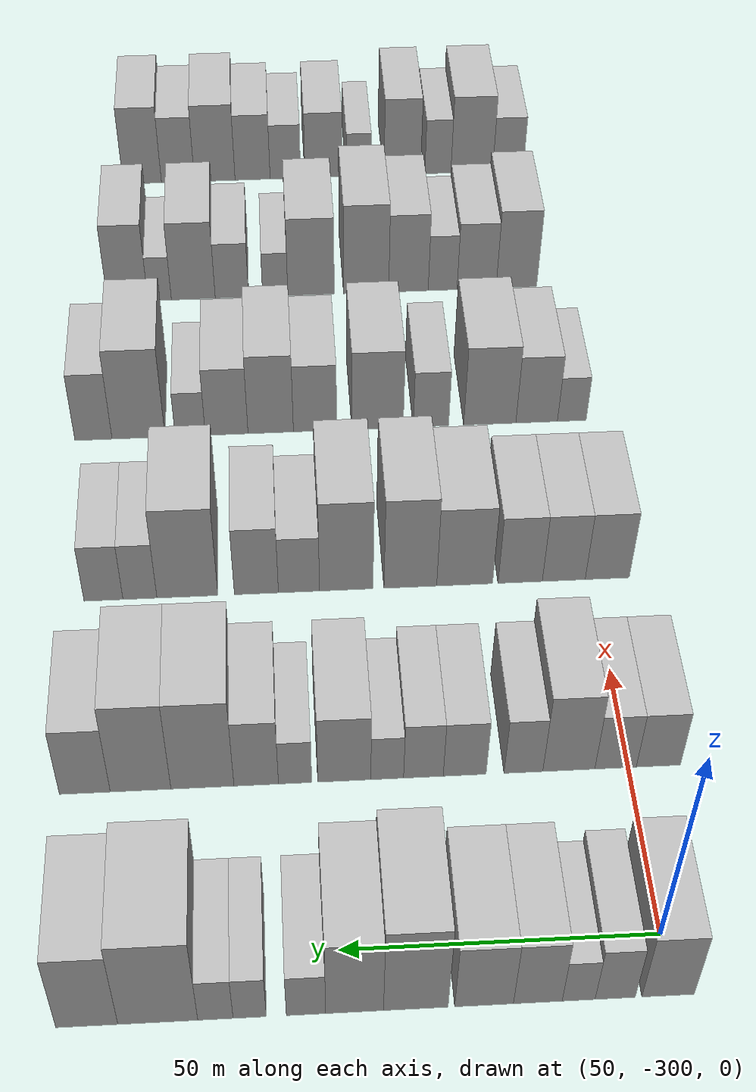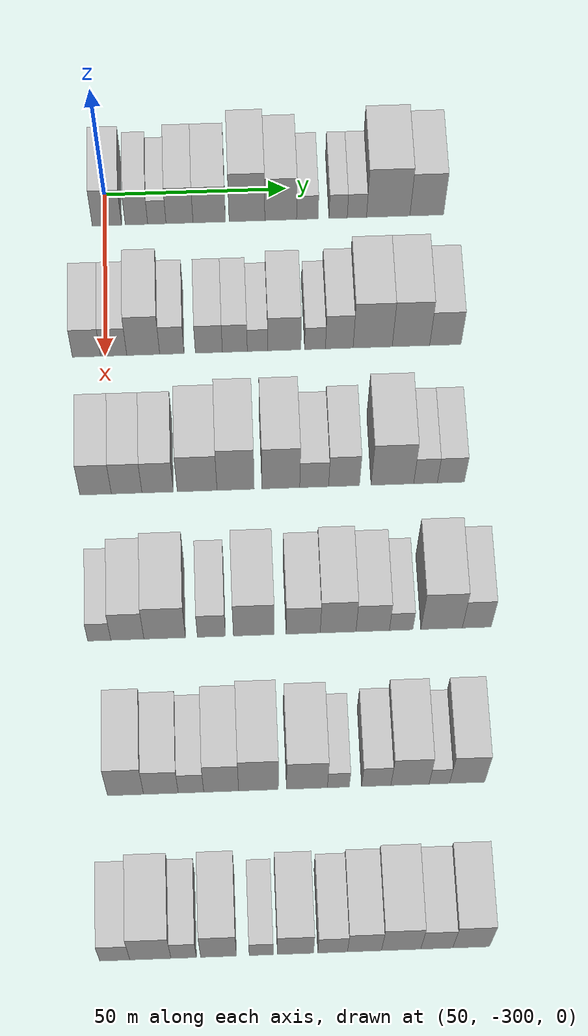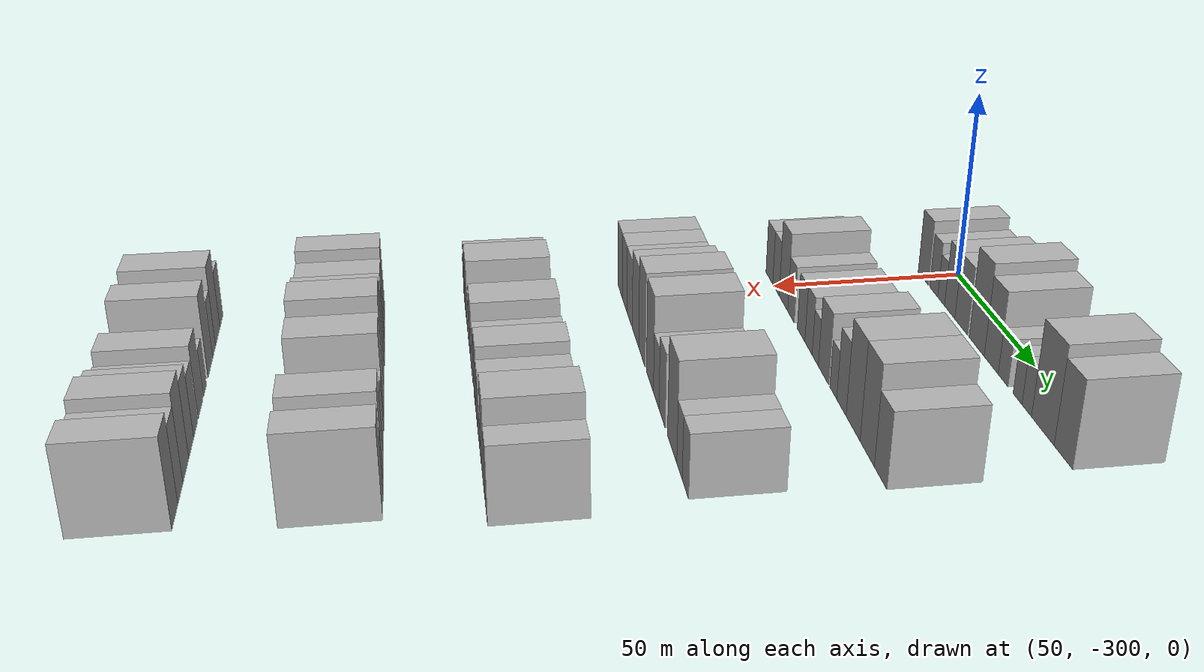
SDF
<sdf version="1.6">
 <world name="default">
  <model name="building_36">
   <static>1</static>
   <pose>50.0000 -299.3510 0 0.000000 0.000000 0.000000</pose>
   <link name="link">
    <pose>0 0 9.00 0 0 0</pose>
    <collision name="collision"><geometry><box><size>20.0000 8.0002 18.0000</size></box></geometry></collision>
    <visual name="visual">
     <cast_shadows>0</cast_shadows>
     <geometry><box><size>20.0000 8.0002 18.0000</size></box></geometry>
     <material>
      <script>
       <uri>model://HANNAS_wall/materials/scripts</uri>
       <uri>model://HANNAS_wall/materials/textures</uri>
       <name>vrc/HANNAS_wall</name>
      </script>
     </material>
    </visual>
   </link>
  </model>
  <model name="building_37">
   <static>1</static>
   <pose>50.0000 -291.2949 0 0.000000 0.000000 0.000000</pose>
   <link name="link">
    <pose>0 0 7.50 0 0 0</pose>
    <collision name="collision"><geometry><box><size>20.0000 6.1120 15.0000</size></box></geometry></collision>
    <visual name="visual">
     <cast_shadows>0</cast_shadows>
     <geometry><box><size>20.0000 6.1120 15.0000</size></box></geometry>
     <material>
      <script>
       <uri>model://HANNAS_wall/materials/scripts</uri>
       <uri>model://HANNAS_wall/materials/textures</uri>
       <name>vrc/HANNAS_wall</name>
      </script>
     </material>
    </visual>
   </link>
  </model>
  <model name="building_38">
   <static>1</static>
   <pose>50.0000 -285.7349 0 0.000000 0.000000 0.000000</pose>
   <link name="link">
    <pose>0 0 6.00 0 0 0</pose>
    <collision name="collision"><geometry><box><size>20.0000 5.0080 12.0000</size></box></geometry></collision>
    <visual name="visual">
     <cast_shadows>0</cast_shadows>
     <geometry><box><size>20.0000 5.0080 12.0000</size></box></geometry>
     <material>
      <script>
       <uri>model://HANNAS_wall/materials/scripts</uri>
       <uri>model://HANNAS_wall/materials/textures</uri>
       <name>vrc/HANNAS_wall</name>
      </script>
     </material>
    </visual>
   </link>
  </model>
  <model name="building_39">
   <static>1</static>
   <pose>50.0000 -279.5450 0 0.000000 0.000000 0.000000</pose>
   <link name="link">
    <pose>0 0 9.00 0 0 0</pose>
    <collision name="collision"><geometry><box><size>20.0000 7.3717 18.0000</size></box></geometry></collision>
    <visual name="visual">
     <cast_shadows>0</cast_shadows>
     <geometry><box><size>20.0000 7.3717 18.0000</size></box></geometry>
     <material>
      <script>
       <uri>model://HANNAS_wall/materials/scripts</uri>
       <uri>model://HANNAS_wall/materials/textures</uri>
       <name>vrc/HANNAS_wall</name>
      </script>
     </material>
    </visual>
   </link>
  </model>
  <model name="building_40">
   <static>1</static>
   <pose>50.0000 -271.4269 0 0.000000 0.000000 0.000000</pose>
   <link name="link">
    <pose>0 0 9.00 0 0 0</pose>
    <collision name="collision"><geometry><box><size>20.0000 8.8646 18.0000</size></box></geometry></collision>
    <visual name="visual">
     <cast_shadows>0</cast_shadows>
     <geometry><box><size>20.0000 8.8646 18.0000</size></box></geometry>
     <material>
      <script>
       <uri>model://HANNAS_wall/materials/scripts</uri>
       <uri>model://HANNAS_wall/materials/textures</uri>
       <name>vrc/HANNAS_wall</name>
      </script>
     </material>
    </visual>
   </link>
  </model>
  <model name="building_41">
   <static>1</static>
   <pose>50.0000 -261.1296 0 0.000000 0.000000 0.000000</pose>
   <link name="link">
    <pose>0 0 12.00 0 0 0</pose>
    <collision name="collision"><geometry><box><size>20.0000 9.7300 24.0000</size></box></geometry></collision>
    <visual name="visual">
     <cast_shadows>0</cast_shadows>
     <geometry><box><size>20.0000 9.7300 24.0000</size></box></geometry>
     <material>
      <script>
       <uri>model://HANNAS_wall/materials/scripts</uri>
       <uri>model://HANNAS_wall/materials/textures</uri>
       <name>vrc/HANNAS_wall</name>
      </script>
     </material>
    </visual>
   </link>
  </model>
  <model name="building_42">
   <static>1</static>
   <pose>50.0000 -251.9216 0 0.000000 0.000000 0.000000</pose>
   <link name="link">
    <pose>0 0 10.50 0 0 0</pose>
    <collision name="collision"><geometry><box><size>20.0000 8.6859 21.0000</size></box></geometry></collision>
    <visual name="visual">
     <cast_shadows>0</cast_shadows>
     <geometry><box><size>20.0000 8.6859 21.0000</size></box></geometry>
     <material>
      <script>
       <uri>model://HANNAS_wall/materials/scripts</uri>
       <uri>model://HANNAS_wall/materials/textures</uri>
       <name>vrc/HANNAS_wall</name>
      </script>
     </material>
    </visual>
   </link>
  </model>
  <model name="building_43">
   <static>1</static>
   <pose>50.0000 -244.6372 0 0.000000 0.000000 0.000000</pose>
   <link name="link">
    <pose>0 0 6.00 0 0 0</pose>
    <collision name="collision"><geometry><box><size>20.0000 5.8830 12.0000</size></box></geometry></collision>
    <visual name="visual">
     <cast_shadows>0</cast_shadows>
     <geometry><box><size>20.0000 5.8830 12.0000</size></box></geometry>
     <material>
      <script>
       <uri>model://HANNAS_wall/materials/scripts</uri>
       <uri>model://HANNAS_wall/materials/textures</uri>
       <name>vrc/HANNAS_wall</name>
      </script>
     </material>
    </visual>
   </link>
  </model>
  <model name="building_44">
   <static>1</static>
   <pose>50.0000 -236.2079 0 0.000000 0.000000 0.000000</pose>
   <link name="link">
    <pose>0 0 6.00 0 0 0</pose>
    <collision name="collision"><geometry><box><size>20.0000 4.9757 12.0000</size></box></geometry></collision>
    <visual name="visual">
     <cast_shadows>0</cast_shadows>
     <geometry><box><size>20.0000 4.9757 12.0000</size></box></geometry>
     <material>
      <script>
       <uri>model://HANNAS_wall/materials/scripts</uri>
       <uri>model://HANNAS_wall/materials/textures</uri>
       <name>vrc/HANNAS_wall</name>
      </script>
     </material>
    </visual>
   </link>
  </model>
  <model name="building_45">
   <static>1</static>
   <pose>50.0000 -231.0833 0 0.000000 0.000000 0.000000</pose>
   <link name="link">
    <pose>0 0 6.00 0 0 0</pose>
    <collision name="collision"><geometry><box><size>20.0000 5.2734 12.0000</size></box></geometry></collision>
    <visual name="visual">
     <cast_shadows>0</cast_shadows>
     <geometry><box><size>20.0000 5.2734 12.0000</size></box></geometry>
     <material>
      <script>
       <uri>model://HANNAS_wall/materials/scripts</uri>
       <uri>model://HANNAS_wall/materials/textures</uri>
       <name>vrc/HANNAS_wall</name>
      </script>
     </material>
    </visual>
   </link>
  </model>
  <model name="building_46">
   <static>1</static>
   <pose>50.0000 -222.4965 0 0.000000 0.000000 0.000000</pose>
   <link name="link">
    <pose>0 0 12.00 0 0 0</pose>
    <collision name="collision"><geometry><box><size>20.0000 11.9003 24.0000</size></box></geometry></collision>
    <visual name="visual">
     <cast_shadows>0</cast_shadows>
     <geometry><box><size>20.0000 11.9003 24.0000</size></box></geometry>
     <material>
      <script>
       <uri>model://HANNAS_wall/materials/scripts</uri>
       <uri>model://HANNAS_wall/materials/textures</uri>
       <name>vrc/HANNAS_wall</name>
      </script>
     </material>
    </visual>
   </link>
  </model>
  <model name="building_47">
   <static>1</static>
   <pose>50.0000 -211.9407 0 0.000000 0.000000 0.000000</pose>
   <link name="link">
    <pose>0 0 10.50 0 0 0</pose>
    <collision name="collision"><geometry><box><size>20.0000 9.2112 21.0000</size></box></geometry></collision>
    <visual name="visual">
     <cast_shadows>0</cast_shadows>
     <geometry><box><size>20.0000 9.2112 21.0000</size></box></geometry>
     <material>
      <script>
       <uri>model://HANNAS_wall/materials/scripts</uri>
       <uri>model://HANNAS_wall/materials/textures</uri>
       <name>vrc/HANNAS_wall</name>
      </script>
     </material>
    </visual>
   </link>
  </model>
  <model name="building_174">
   <static>1</static>
   <pose>90.0000 -305.0205 0 0.000000 0.000000 0.000000</pose>
   <link name="link">
    <pose>0 0 7.50 0 0 0</pose>
    <collision name="collision"><geometry><box><size>20.0000 7.4424 15.0000</size></box></geometry></collision>
    <visual name="visual">
     <cast_shadows>0</cast_shadows>
     <geometry><box><size>20.0000 7.4424 15.0000</size></box></geometry>
     <material>
      <script>
       <uri>model://HANNAS_wall/materials/scripts</uri>
       <uri>model://HANNAS_wall/materials/textures</uri>
       <name>vrc/HANNAS_wall</name>
      </script>
     </material>
    </visual>
   </link>
  </model>
  <model name="building_175">
   <static>1</static>
   <pose>90.0000 -297.8100 0 0.000000 0.000000 0.000000</pose>
   <link name="link">
    <pose>0 0 7.50 0 0 0</pose>
    <collision name="collision"><geometry><box><size>20.0000 6.9787 15.0000</size></box></geometry></collision>
    <visual name="visual">
     <cast_shadows>0</cast_shadows>
     <geometry><box><size>20.0000 6.9787 15.0000</size></box></geometry>
     <material>
      <script>
       <uri>model://HANNAS_wall/materials/scripts</uri>
       <uri>model://HANNAS_wall/materials/textures</uri>
       <name>vrc/HANNAS_wall</name>
      </script>
     </material>
    </visual>
   </link>
  </model>
  <model name="building_176">
   <static>1</static>
   <pose>90.0000 -289.9534 0 0.000000 0.000000 0.000000</pose>
   <link name="link">
    <pose>0 0 10.50 0 0 0</pose>
    <collision name="collision"><geometry><box><size>20.0000 8.7344 21.0000</size></box></geometry></collision>
    <visual name="visual">
     <cast_shadows>0</cast_shadows>
     <geometry><box><size>20.0000 8.7344 21.0000</size></box></geometry>
     <material>
      <script>
       <uri>model://HANNAS_wall/materials/scripts</uri>
       <uri>model://HANNAS_wall/materials/textures</uri>
       <name>vrc/HANNAS_wall</name>
      </script>
     </material>
    </visual>
   </link>
  </model>
  <model name="building_177">
   <static>1</static>
   <pose>90.0000 -282.3411 0 0.000000 0.000000 0.000000</pose>
   <link name="link">
    <pose>0 0 7.50 0 0 0</pose>
    <collision name="collision"><geometry><box><size>20.0000 6.4903 15.0000</size></box></geometry></collision>
    <visual name="visual">
     <cast_shadows>0</cast_shadows>
     <geometry><box><size>20.0000 6.4903 15.0000</size></box></geometry>
     <material>
      <script>
       <uri>model://HANNAS_wall/materials/scripts</uri>
       <uri>model://HANNAS_wall/materials/textures</uri>
       <name>vrc/HANNAS_wall</name>
      </script>
     </material>
    </visual>
   </link>
  </model>
  <model name="building_178">
   <static>1</static>
   <pose>90.0000 -272.5128 0 0.000000 0.000000 0.000000</pose>
   <link name="link">
    <pose>0 0 7.50 0 0 0</pose>
    <collision name="collision"><geometry><box><size>20.0000 7.1663 15.0000</size></box></geometry></collision>
    <visual name="visual">
     <cast_shadows>0</cast_shadows>
     <geometry><box><size>20.0000 7.1663 15.0000</size></box></geometry>
     <material>
      <script>
       <uri>model://HANNAS_wall/materials/scripts</uri>
       <uri>model://HANNAS_wall/materials/textures</uri>
       <name>vrc/HANNAS_wall</name>
      </script>
     </material>
    </visual>
   </link>
  </model>
  <model name="building_179">
   <static>1</static>
   <pose>90.0000 -265.6254 0 0.000000 0.000000 0.000000</pose>
   <link name="link">
    <pose>0 0 7.50 0 0 0</pose>
    <collision name="collision"><geometry><box><size>20.0000 6.6085 15.0000</size></box></geometry></collision>
    <visual name="visual">
     <cast_shadows>0</cast_shadows>
     <geometry><box><size>20.0000 6.6085 15.0000</size></box></geometry>
     <material>
      <script>
       <uri>model://HANNAS_wall/materials/scripts</uri>
       <uri>model://HANNAS_wall/materials/textures</uri>
       <name>vrc/HANNAS_wall</name>
      </script>
     </material>
    </visual>
   </link>
  </model>
  <model name="building_180">
   <static>1</static>
   <pose>90.0000 -259.5897 0 0.000000 0.000000 0.000000</pose>
   <link name="link">
    <pose>0 0 6.00 0 0 0</pose>
    <collision name="collision"><geometry><box><size>20.0000 5.4628 12.0000</size></box></geometry></collision>
    <visual name="visual">
     <cast_shadows>0</cast_shadows>
     <geometry><box><size>20.0000 5.4628 12.0000</size></box></geometry>
     <material>
      <script>
       <uri>model://HANNAS_wall/materials/scripts</uri>
       <uri>model://HANNAS_wall/materials/textures</uri>
       <name>vrc/HANNAS_wall</name>
      </script>
     </material>
    </visual>
   </link>
  </model>
  <model name="building_181">
   <static>1</static>
   <pose>90.0000 -252.4608 0 0.000000 0.000000 0.000000</pose>
   <link name="link">
    <pose>0 0 9.00 0 0 0</pose>
    <collision name="collision"><geometry><box><size>20.0000 8.7951 18.0000</size></box></geometry></collision>
    <visual name="visual">
     <cast_shadows>0</cast_shadows>
     <geometry><box><size>20.0000 8.7951 18.0000</size></box></geometry>
     <material>
      <script>
       <uri>model://HANNAS_wall/materials/scripts</uri>
       <uri>model://HANNAS_wall/materials/textures</uri>
       <name>vrc/HANNAS_wall</name>
      </script>
     </material>
    </visual>
   </link>
  </model>
  <model name="building_182">
   <static>1</static>
   <pose>90.0000 -244.3049 0 0.000000 0.000000 0.000000</pose>
   <link name="link">
    <pose>0 0 6.00 0 0 0</pose>
    <collision name="collision"><geometry><box><size>20.0000 5.5166 12.0000</size></box></geometry></collision>
    <visual name="visual">
     <cast_shadows>0</cast_shadows>
     <geometry><box><size>20.0000 5.5166 12.0000</size></box></geometry>
     <material>
      <script>
       <uri>model://HANNAS_wall/materials/scripts</uri>
       <uri>model://HANNAS_wall/materials/textures</uri>
       <name>vrc/HANNAS_wall</name>
      </script>
     </material>
    </visual>
   </link>
  </model>
  <model name="building_183">
   <static>1</static>
   <pose>90.0000 -237.8614 0 0.000000 0.000000 0.000000</pose>
   <link name="link">
    <pose>0 0 9.00 0 0 0</pose>
    <collision name="collision"><geometry><box><size>20.0000 7.3703 18.0000</size></box></geometry></collision>
    <visual name="visual">
     <cast_shadows>0</cast_shadows>
     <geometry><box><size>20.0000 7.3703 18.0000</size></box></geometry>
     <material>
      <script>
       <uri>model://HANNAS_wall/materials/scripts</uri>
       <uri>model://HANNAS_wall/materials/textures</uri>
       <name>vrc/HANNAS_wall</name>
      </script>
     </material>
    </visual>
   </link>
  </model>
  <model name="building_184">
   <static>1</static>
   <pose>90.0000 -228.9730 0 0.000000 0.000000 0.000000</pose>
   <link name="link">
    <pose>0 0 12.00 0 0 0</pose>
    <collision name="collision"><geometry><box><size>20.0000 10.4066 24.0000</size></box></geometry></collision>
    <visual name="visual">
     <cast_shadows>0</cast_shadows>
     <geometry><box><size>20.0000 10.4066 24.0000</size></box></geometry>
     <material>
      <script>
       <uri>model://HANNAS_wall/materials/scripts</uri>
       <uri>model://HANNAS_wall/materials/textures</uri>
       <name>vrc/HANNAS_wall</name>
      </script>
     </material>
    </visual>
   </link>
  </model>
  <model name="building_185">
   <static>1</static>
   <pose>90.0000 -218.7732 0 0.000000 0.000000 0.000000</pose>
   <link name="link">
    <pose>0 0 12.00 0 0 0</pose>
    <collision name="collision"><geometry><box><size>20.0000 9.9929 24.0000</size></box></geometry></collision>
    <visual name="visual">
     <cast_shadows>0</cast_shadows>
     <geometry><box><size>20.0000 9.9929 24.0000</size></box></geometry>
     <material>
      <script>
       <uri>model://HANNAS_wall/materials/scripts</uri>
       <uri>model://HANNAS_wall/materials/textures</uri>
       <name>vrc/HANNAS_wall</name>
      </script>
     </material>
    </visual>
   </link>
  </model>
  <model name="building_186">
   <static>1</static>
   <pose>90.0000 -209.5984 0 0.000000 0.000000 0.000000</pose>
   <link name="link">
    <pose>0 0 9.00 0 0 0</pose>
    <collision name="collision"><geometry><box><size>20.0000 8.3568 18.0000</size></box></geometry></collision>
    <visual name="visual">
     <cast_shadows>0</cast_shadows>
     <geometry><box><size>20.0000 8.3568 18.0000</size></box></geometry>
     <material>
      <script>
       <uri>model://HANNAS_wall/materials/scripts</uri>
       <uri>model://HANNAS_wall/materials/textures</uri>
       <name>vrc/HANNAS_wall</name>
      </script>
     </material>
    </visual>
   </link>
  </model>
  <model name="building_313">
   <static>1</static>
   <pose>130.0000 -302.7318 0 0.000000 0.000000 0.000000</pose>
   <link name="link">
    <pose>0 0 9.00 0 0 0</pose>
    <collision name="collision"><geometry><box><size>20.0000 8.1231 18.0000</size></box></geometry></collision>
    <visual name="visual">
     <cast_shadows>0</cast_shadows>
     <geometry><box><size>20.0000 8.1231 18.0000</size></box></geometry>
     <material>
      <script>
       <uri>model://HANNAS_wall/materials/scripts</uri>
       <uri>model://HANNAS_wall/materials/textures</uri>
       <name>vrc/HANNAS_wall</name>
      </script>
     </material>
    </visual>
   </link>
  </model>
  <model name="building_314">
   <static>1</static>
   <pose>130.0000 -294.7205 0 0.000000 0.000000 0.000000</pose>
   <link name="link">
    <pose>0 0 9.00 0 0 0</pose>
    <collision name="collision"><geometry><box><size>20.0000 7.8995 18.0000</size></box></geometry></collision>
    <visual name="visual">
     <cast_shadows>0</cast_shadows>
     <geometry><box><size>20.0000 7.8995 18.0000</size></box></geometry>
     <material>
      <script>
       <uri>model://HANNAS_wall/materials/scripts</uri>
       <uri>model://HANNAS_wall/materials/textures</uri>
       <name>vrc/HANNAS_wall</name>
      </script>
     </material>
    </visual>
   </link>
  </model>
  <model name="building_315">
   <static>1</static>
   <pose>130.0000 -286.7150 0 0.000000 0.000000 0.000000</pose>
   <link name="link">
    <pose>0 0 9.00 0 0 0</pose>
    <collision name="collision"><geometry><box><size>20.0000 8.1115 18.0000</size></box></geometry></collision>
    <visual name="visual">
     <cast_shadows>0</cast_shadows>
     <geometry><box><size>20.0000 8.1115 18.0000</size></box></geometry>
     <material>
      <script>
       <uri>model://HANNAS_wall/materials/scripts</uri>
       <uri>model://HANNAS_wall/materials/textures</uri>
       <name>vrc/HANNAS_wall</name>
      </script>
     </material>
    </visual>
   </link>
  </model>
  <model name="building_316">
   <static>1</static>
   <pose>130.0000 -276.5363 0 0.000000 0.000000 0.000000</pose>
   <link name="link">
    <pose>0 0 10.50 0 0 0</pose>
    <collision name="collision"><geometry><box><size>20.0000 10.2459 21.0000</size></box></geometry></collision>
    <visual name="visual">
     <cast_shadows>0</cast_shadows>
     <geometry><box><size>20.0000 10.2459 21.0000</size></box></geometry>
     <material>
      <script>
       <uri>model://HANNAS_wall/materials/scripts</uri>
       <uri>model://HANNAS_wall/materials/textures</uri>
       <name>vrc/HANNAS_wall</name>
      </script>
     </material>
    </visual>
   </link>
  </model>
  <model name="building_317">
   <static>1</static>
   <pose>130.0000 -266.6006 0 0.000000 0.000000 0.000000</pose>
   <link name="link">
    <pose>0 0 12.00 0 0 0</pose>
    <collision name="collision"><geometry><box><size>20.0000 9.6255 24.0000</size></box></geometry></collision>
    <visual name="visual">
     <cast_shadows>0</cast_shadows>
     <geometry><box><size>20.0000 9.6255 24.0000</size></box></geometry>
     <material>
      <script>
       <uri>model://HANNAS_wall/materials/scripts</uri>
       <uri>model://HANNAS_wall/materials/textures</uri>
       <name>vrc/HANNAS_wall</name>
      </script>
     </material>
    </visual>
   </link>
  </model>
  <model name="building_318">
   <static>1</static>
   <pose>130.0000 -254.9189 0 0.000000 0.000000 0.000000</pose>
   <link name="link">
    <pose>0 0 12.00 0 0 0</pose>
    <collision name="collision"><geometry><box><size>20.0000 9.7379 24.0000</size></box></geometry></collision>
    <visual name="visual">
     <cast_shadows>0</cast_shadows>
     <geometry><box><size>20.0000 9.7379 24.0000</size></box></geometry>
     <material>
      <script>
       <uri>model://HANNAS_wall/materials/scripts</uri>
       <uri>model://HANNAS_wall/materials/textures</uri>
       <name>vrc/HANNAS_wall</name>
      </script>
     </material>
    </visual>
   </link>
  </model>
  <model name="building_319">
   <static>1</static>
   <pose>130.0000 -246.3147 0 0.000000 0.000000 0.000000</pose>
   <link name="link">
    <pose>0 0 7.50 0 0 0</pose>
    <collision name="collision"><geometry><box><size>20.0000 7.4704 15.0000</size></box></geometry></collision>
    <visual name="visual">
     <cast_shadows>0</cast_shadows>
     <geometry><box><size>20.0000 7.4704 15.0000</size></box></geometry>
     <material>
      <script>
       <uri>model://HANNAS_wall/materials/scripts</uri>
       <uri>model://HANNAS_wall/materials/textures</uri>
       <name>vrc/HANNAS_wall</name>
      </script>
     </material>
    </visual>
   </link>
  </model>
  <model name="building_320">
   <static>1</static>
   <pose>130.0000 -238.5871 0 0.000000 0.000000 0.000000</pose>
   <link name="link">
    <pose>0 0 9.00 0 0 0</pose>
    <collision name="collision"><geometry><box><size>20.0000 7.9848 18.0000</size></box></geometry></collision>
    <visual name="visual">
     <cast_shadows>0</cast_shadows>
     <geometry><box><size>20.0000 7.9848 18.0000</size></box></geometry>
     <material>
      <script>
       <uri>model://HANNAS_wall/materials/scripts</uri>
       <uri>model://HANNAS_wall/materials/textures</uri>
       <name>vrc/HANNAS_wall</name>
      </script>
     </material>
    </visual>
   </link>
  </model>
  <model name="building_321">
   <static>1</static>
   <pose>130.0000 -226.0807 0 0.000000 0.000000 0.000000</pose>
   <link name="link">
    <pose>0 0 12.00 0 0 0</pose>
    <collision name="collision"><geometry><box><size>20.0000 11.0281 24.0000</size></box></geometry></collision>
    <visual name="visual">
     <cast_shadows>0</cast_shadows>
     <geometry><box><size>20.0000 11.0281 24.0000</size></box></geometry>
     <material>
      <script>
       <uri>model://HANNAS_wall/materials/scripts</uri>
       <uri>model://HANNAS_wall/materials/textures</uri>
       <name>vrc/HANNAS_wall</name>
      </script>
     </material>
    </visual>
   </link>
  </model>
  <model name="building_322">
   <static>1</static>
   <pose>130.0000 -217.4981 0 0.000000 0.000000 0.000000</pose>
   <link name="link">
    <pose>0 0 7.50 0 0 0</pose>
    <collision name="collision"><geometry><box><size>20.0000 6.1370 15.0000</size></box></geometry></collision>
    <visual name="visual">
     <cast_shadows>0</cast_shadows>
     <geometry><box><size>20.0000 6.1370 15.0000</size></box></geometry>
     <material>
      <script>
       <uri>model://HANNAS_wall/materials/scripts</uri>
       <uri>model://HANNAS_wall/materials/textures</uri>
       <name>vrc/HANNAS_wall</name>
      </script>
     </material>
    </visual>
   </link>
  </model>
  <model name="building_323">
   <static>1</static>
   <pose>130.0000 -210.9225 0 0.000000 0.000000 0.000000</pose>
   <link name="link">
    <pose>0 0 7.50 0 0 0</pose>
    <collision name="collision"><geometry><box><size>20.0000 7.0143 15.0000</size></box></geometry></collision>
    <visual name="visual">
     <cast_shadows>0</cast_shadows>
     <geometry><box><size>20.0000 7.0143 15.0000</size></box></geometry>
     <material>
      <script>
       <uri>model://HANNAS_wall/materials/scripts</uri>
       <uri>model://HANNAS_wall/materials/textures</uri>
       <name>vrc/HANNAS_wall</name>
      </script>
     </material>
    </visual>
   </link>
  </model>
  <model name="building_449">
   <static>1</static>
   <pose>170.0000 -301.9512 0 0.000000 0.000000 0.000000</pose>
   <link name="link">
    <pose>0 0 6.00 0 0 0</pose>
    <collision name="collision"><geometry><box><size>20.0000 5.7567 12.0000</size></box></geometry></collision>
    <visual name="visual">
     <cast_shadows>0</cast_shadows>
     <geometry><box><size>20.0000 5.7567 12.0000</size></box></geometry>
     <material>
      <script>
       <uri>model://HANNAS_wall/materials/scripts</uri>
       <uri>model://HANNAS_wall/materials/textures</uri>
       <name>vrc/HANNAS_wall</name>
      </script>
     </material>
    </visual>
   </link>
  </model>
  <model name="building_450">
   <static>1</static>
   <pose>170.0000 -294.9196 0 0.000000 0.000000 0.000000</pose>
   <link name="link">
    <pose>0 0 9.00 0 0 0</pose>
    <collision name="collision"><geometry><box><size>20.0000 8.3065 18.0000</size></box></geometry></collision>
    <visual name="visual">
     <cast_shadows>0</cast_shadows>
     <geometry><box><size>20.0000 8.3065 18.0000</size></box></geometry>
     <material>
      <script>
       <uri>model://HANNAS_wall/materials/scripts</uri>
       <uri>model://HANNAS_wall/materials/textures</uri>
       <name>vrc/HANNAS_wall</name>
      </script>
     </material>
    </visual>
   </link>
  </model>
  <model name="building_451">
   <static>1</static>
   <pose>170.0000 -285.5639 0 0.000000 0.000000 0.000000</pose>
   <link name="link">
    <pose>0 0 10.50 0 0 0</pose>
    <collision name="collision"><geometry><box><size>20.0000 10.4047 21.0000</size></box></geometry></collision>
    <visual name="visual">
     <cast_shadows>0</cast_shadows>
     <geometry><box><size>20.0000 10.4047 21.0000</size></box></geometry>
     <material>
      <script>
       <uri>model://HANNAS_wall/materials/scripts</uri>
       <uri>model://HANNAS_wall/materials/textures</uri>
       <name>vrc/HANNAS_wall</name>
      </script>
     </material>
    </visual>
   </link>
  </model>
  <model name="building_452">
   <static>1</static>
   <pose>170.0000 -273.8439 0 0.000000 0.000000 0.000000</pose>
   <link name="link">
    <pose>0 0 7.50 0 0 0</pose>
    <collision name="collision"><geometry><box><size>20.0000 7.0354 15.0000</size></box></geometry></collision>
    <visual name="visual">
     <cast_shadows>0</cast_shadows>
     <geometry><box><size>20.0000 7.0354 15.0000</size></box></geometry>
     <material>
      <script>
       <uri>model://HANNAS_wall/materials/scripts</uri>
       <uri>model://HANNAS_wall/materials/textures</uri>
       <name>vrc/HANNAS_wall</name>
      </script>
     </material>
    </visual>
   </link>
  </model>
  <model name="building_453">
   <static>1</static>
   <pose>170.0000 -263.2300 0 0.000000 0.000000 0.000000</pose>
   <link name="link">
    <pose>0 0 10.50 0 0 0</pose>
    <collision name="collision"><geometry><box><size>20.0000 10.1925 21.0000</size></box></geometry></collision>
    <visual name="visual">
     <cast_shadows>0</cast_shadows>
     <geometry><box><size>20.0000 10.1925 21.0000</size></box></geometry>
     <material>
      <script>
       <uri>model://HANNAS_wall/materials/scripts</uri>
       <uri>model://HANNAS_wall/materials/textures</uri>
       <name>vrc/HANNAS_wall</name>
      </script>
     </material>
    </visual>
   </link>
  </model>
  <model name="building_454">
   <static>1</static>
   <pose>170.0000 -250.8536 0 0.000000 0.000000 0.000000</pose>
   <link name="link">
    <pose>0 0 9.00 0 0 0</pose>
    <collision name="collision"><geometry><box><size>20.0000 8.5603 18.0000</size></box></geometry></collision>
    <visual name="visual">
     <cast_shadows>0</cast_shadows>
     <geometry><box><size>20.0000 8.5603 18.0000</size></box></geometry>
     <material>
      <script>
       <uri>model://HANNAS_wall/materials/scripts</uri>
       <uri>model://HANNAS_wall/materials/textures</uri>
       <name>vrc/HANNAS_wall</name>
      </script>
     </material>
    </visual>
   </link>
  </model>
  <model name="building_455">
   <static>1</static>
   <pose>170.0000 -242.0900 0 0.000000 0.000000 0.000000</pose>
   <link name="link">
    <pose>0 0 10.50 0 0 0</pose>
    <collision name="collision"><geometry><box><size>20.0000 8.9669 21.0000</size></box></geometry></collision>
    <visual name="visual">
     <cast_shadows>0</cast_shadows>
     <geometry><box><size>20.0000 8.9669 21.0000</size></box></geometry>
     <material>
      <script>
       <uri>model://HANNAS_wall/materials/scripts</uri>
       <uri>model://HANNAS_wall/materials/textures</uri>
       <name>vrc/HANNAS_wall</name>
      </script>
     </material>
    </visual>
   </link>
  </model>
  <model name="building_456">
   <static>1</static>
   <pose>170.0000 -233.4032 0 0.000000 0.000000 0.000000</pose>
   <link name="link">
    <pose>0 0 9.00 0 0 0</pose>
    <collision name="collision"><geometry><box><size>20.0000 8.4068 18.0000</size></box></geometry></collision>
    <visual name="visual">
     <cast_shadows>0</cast_shadows>
     <geometry><box><size>20.0000 8.4068 18.0000</size></box></geometry>
     <material>
      <script>
       <uri>model://HANNAS_wall/materials/scripts</uri>
       <uri>model://HANNAS_wall/materials/textures</uri>
       <name>vrc/HANNAS_wall</name>
      </script>
     </material>
    </visual>
   </link>
  </model>
  <model name="building_457">
   <static>1</static>
   <pose>170.0000 -226.2401 0 0.000000 0.000000 0.000000</pose>
   <link name="link">
    <pose>0 0 6.00 0 0 0</pose>
    <collision name="collision"><geometry><box><size>20.0000 5.9194 12.0000</size></box></geometry></collision>
    <visual name="visual">
     <cast_shadows>0</cast_shadows>
     <geometry><box><size>20.0000 5.9194 12.0000</size></box></geometry>
     <material>
      <script>
       <uri>model://HANNAS_wall/materials/scripts</uri>
       <uri>model://HANNAS_wall/materials/textures</uri>
       <name>vrc/HANNAS_wall</name>
      </script>
     </material>
    </visual>
   </link>
  </model>
  <model name="building_458">
   <static>1</static>
   <pose>170.0000 -216.0684 0 0.000000 0.000000 0.000000</pose>
   <link name="link">
    <pose>0 0 12.00 0 0 0</pose>
    <collision name="collision"><geometry><box><size>20.0000 10.4240 24.0000</size></box></geometry></collision>
    <visual name="visual">
     <cast_shadows>0</cast_shadows>
     <geometry><box><size>20.0000 10.4240 24.0000</size></box></geometry>
     <material>
      <script>
       <uri>model://HANNAS_wall/materials/scripts</uri>
       <uri>model://HANNAS_wall/materials/textures</uri>
       <name>vrc/HANNAS_wall</name>
      </script>
     </material>
    </visual>
   </link>
  </model>
  <model name="building_459">
   <static>1</static>
   <pose>170.0000 -207.2158 0 0.000000 0.000000 0.000000</pose>
   <link name="link">
    <pose>0 0 9.00 0 0 0</pose>
    <collision name="collision"><geometry><box><size>20.0000 7.2812 18.0000</size></box></geometry></collision>
    <visual name="visual">
     <cast_shadows>0</cast_shadows>
     <geometry><box><size>20.0000 7.2812 18.0000</size></box></geometry>
     <material>
      <script>
       <uri>model://HANNAS_wall/materials/scripts</uri>
       <uri>model://HANNAS_wall/materials/textures</uri>
       <name>vrc/HANNAS_wall</name>
      </script>
     </material>
    </visual>
   </link>
  </model>
  <model name="building_590">
   <static>1</static>
   <pose>210.0000 -295.7303 0 0.000000 0.000000 0.000000</pose>
   <link name="link">
    <pose>0 0 10.50 0 0 0</pose>
    <collision name="collision"><geometry><box><size>20.0000 8.7551 21.0000</size></box></geometry></collision>
    <visual name="visual">
     <cast_shadows>0</cast_shadows>
     <geometry><box><size>20.0000 8.7551 21.0000</size></box></geometry>
     <material>
      <script>
       <uri>model://HANNAS_wall/materials/scripts</uri>
       <uri>model://HANNAS_wall/materials/textures</uri>
       <name>vrc/HANNAS_wall</name>
      </script>
     </material>
    </visual>
   </link>
  </model>
  <model name="building_591">
   <static>1</static>
   <pose>210.0000 -287.1433 0 0.000000 0.000000 0.000000</pose>
   <link name="link">
    <pose>0 0 9.00 0 0 0</pose>
    <collision name="collision"><geometry><box><size>20.0000 8.4190 18.0000</size></box></geometry></collision>
    <visual name="visual">
     <cast_shadows>0</cast_shadows>
     <geometry><box><size>20.0000 8.4190 18.0000</size></box></geometry>
     <material>
      <script>
       <uri>model://HANNAS_wall/materials/scripts</uri>
       <uri>model://HANNAS_wall/materials/textures</uri>
       <name>vrc/HANNAS_wall</name>
      </script>
     </material>
    </visual>
   </link>
  </model>
  <model name="building_592">
   <static>1</static>
   <pose>210.0000 -279.8338 0 0.000000 0.000000 0.000000</pose>
   <link name="link">
    <pose>0 0 7.50 0 0 0</pose>
    <collision name="collision"><geometry><box><size>20.0000 6.2000 15.0000</size></box></geometry></collision>
    <visual name="visual">
     <cast_shadows>0</cast_shadows>
     <geometry><box><size>20.0000 6.2000 15.0000</size></box></geometry>
     <material>
      <script>
       <uri>model://HANNAS_wall/materials/scripts</uri>
       <uri>model://HANNAS_wall/materials/textures</uri>
       <name>vrc/HANNAS_wall</name>
      </script>
     </material>
    </visual>
   </link>
  </model>
  <model name="building_593">
   <static>1</static>
   <pose>210.0000 -272.4890 0 0.000000 0.000000 0.000000</pose>
   <link name="link">
    <pose>0 0 10.50 0 0 0</pose>
    <collision name="collision"><geometry><box><size>20.0000 8.4896 21.0000</size></box></geometry></collision>
    <visual name="visual">
     <cast_shadows>0</cast_shadows>
     <geometry><box><size>20.0000 8.4896 21.0000</size></box></geometry>
     <material>
      <script>
       <uri>model://HANNAS_wall/materials/scripts</uri>
       <uri>model://HANNAS_wall/materials/textures</uri>
       <name>vrc/HANNAS_wall</name>
      </script>
     </material>
    </visual>
   </link>
  </model>
  <model name="building_594">
   <static>1</static>
   <pose>210.0000 -263.4189 0 0.000000 0.000000 0.000000</pose>
   <link name="link">
    <pose>0 0 12.00 0 0 0</pose>
    <collision name="collision"><geometry><box><size>20.0000 9.6505 24.0000</size></box></geometry></collision>
    <visual name="visual">
     <cast_shadows>0</cast_shadows>
     <geometry><box><size>20.0000 9.6505 24.0000</size></box></geometry>
     <material>
      <script>
       <uri>model://HANNAS_wall/materials/scripts</uri>
       <uri>model://HANNAS_wall/materials/textures</uri>
       <name>vrc/HANNAS_wall</name>
      </script>
     </material>
    </visual>
   </link>
  </model>
  <model name="building_595">
   <static>1</static>
   <pose>210.0000 -251.6260 0 0.000000 0.000000 0.000000</pose>
   <link name="link">
    <pose>0 0 10.50 0 0 0</pose>
    <collision name="collision"><geometry><box><size>20.0000 9.9354 21.0000</size></box></geometry></collision>
    <visual name="visual">
     <cast_shadows>0</cast_shadows>
     <geometry><box><size>20.0000 9.9354 21.0000</size></box></geometry>
     <material>
      <script>
       <uri>model://HANNAS_wall/materials/scripts</uri>
       <uri>model://HANNAS_wall/materials/textures</uri>
       <name>vrc/HANNAS_wall</name>
      </script>
     </material>
    </visual>
   </link>
  </model>
  <model name="building_596">
   <static>1</static>
   <pose>210.0000 -243.9786 0 0.000000 0.000000 0.000000</pose>
   <link name="link">
    <pose>0 0 6.00 0 0 0</pose>
    <collision name="collision"><geometry><box><size>20.0000 5.3593 12.0000</size></box></geometry></collision>
    <visual name="visual">
     <cast_shadows>0</cast_shadows>
     <geometry><box><size>20.0000 5.3593 12.0000</size></box></geometry>
     <material>
      <script>
       <uri>model://HANNAS_wall/materials/scripts</uri>
       <uri>model://HANNAS_wall/materials/textures</uri>
       <name>vrc/HANNAS_wall</name>
      </script>
     </material>
    </visual>
   </link>
  </model>
  <model name="building_597">
   <static>1</static>
   <pose>210.0000 -234.7405 0 0.000000 0.000000 0.000000</pose>
   <link name="link">
    <pose>0 0 7.50 0 0 0</pose>
    <collision name="collision"><geometry><box><size>20.0000 7.1168 15.0000</size></box></geometry></collision>
    <visual name="visual">
     <cast_shadows>0</cast_shadows>
     <geometry><box><size>20.0000 7.1168 15.0000</size></box></geometry>
     <material>
      <script>
       <uri>model://HANNAS_wall/materials/scripts</uri>
       <uri>model://HANNAS_wall/materials/textures</uri>
       <name>vrc/HANNAS_wall</name>
      </script>
     </material>
    </visual>
   </link>
  </model>
  <model name="building_598">
   <static>1</static>
   <pose>210.0000 -226.5125 0 0.000000 0.000000 0.000000</pose>
   <link name="link">
    <pose>0 0 10.50 0 0 0</pose>
    <collision name="collision"><geometry><box><size>20.0000 9.3392 21.0000</size></box></geometry></collision>
    <visual name="visual">
     <cast_shadows>0</cast_shadows>
     <geometry><box><size>20.0000 9.3392 21.0000</size></box></geometry>
     <material>
      <script>
       <uri>model://HANNAS_wall/materials/scripts</uri>
       <uri>model://HANNAS_wall/materials/textures</uri>
       <name>vrc/HANNAS_wall</name>
      </script>
     </material>
    </visual>
   </link>
  </model>
  <model name="building_599">
   <static>1</static>
   <pose>210.0000 -219.3450 0 0.000000 0.000000 0.000000</pose>
   <link name="link">
    <pose>0 0 6.00 0 0 0</pose>
    <collision name="collision"><geometry><box><size>20.0000 4.9959 12.0000</size></box></geometry></collision>
    <visual name="visual">
     <cast_shadows>0</cast_shadows>
     <geometry><box><size>20.0000 4.9959 12.0000</size></box></geometry>
     <material>
      <script>
       <uri>model://HANNAS_wall/materials/scripts</uri>
       <uri>model://HANNAS_wall/materials/textures</uri>
       <name>vrc/HANNAS_wall</name>
      </script>
     </material>
    </visual>
   </link>
  </model>
  <model name="building_600">
   <static>1</static>
   <pose>210.0000 -212.5654 0 0.000000 0.000000 0.000000</pose>
   <link name="link">
    <pose>0 0 10.50 0 0 0</pose>
    <collision name="collision"><geometry><box><size>20.0000 8.5633 21.0000</size></box></geometry></collision>
    <visual name="visual">
     <cast_shadows>0</cast_shadows>
     <geometry><box><size>20.0000 8.5633 21.0000</size></box></geometry>
     <material>
      <script>
       <uri>model://HANNAS_wall/materials/scripts</uri>
       <uri>model://HANNAS_wall/materials/textures</uri>
       <name>vrc/HANNAS_wall</name>
      </script>
     </material>
    </visual>
   </link>
  </model>
  <model name="building_730">
   <static>1</static>
   <pose>250.0000 -298.6287 0 0.000000 0.000000 0.000000</pose>
   <link name="link">
    <pose>0 0 7.50 0 0 0</pose>
    <collision name="collision"><geometry><box><size>20.0000 7.0773 15.0000</size></box></geometry></collision>
    <visual name="visual">
     <cast_shadows>0</cast_shadows>
     <geometry><box><size>20.0000 7.0773 15.0000</size></box></geometry>
     <material>
      <script>
       <uri>model://HANNAS_wall/materials/scripts</uri>
       <uri>model://HANNAS_wall/materials/textures</uri>
       <name>vrc/HANNAS_wall</name>
      </script>
     </material>
    </visual>
   </link>
  </model>
  <model name="building_731">
   <static>1</static>
   <pose>250.0000 -290.2507 0 0.000000 0.000000 0.000000</pose>
   <link name="link">
    <pose>0 0 10.50 0 0 0</pose>
    <collision name="collision"><geometry><box><size>20.0000 9.6787 21.0000</size></box></geometry></collision>
    <visual name="visual">
     <cast_shadows>0</cast_shadows>
     <geometry><box><size>20.0000 9.6787 21.0000</size></box></geometry>
     <material>
      <script>
       <uri>model://HANNAS_wall/materials/scripts</uri>
       <uri>model://HANNAS_wall/materials/textures</uri>
       <name>vrc/HANNAS_wall</name>
      </script>
     </material>
    </visual>
   </link>
  </model>
  <model name="building_732">
   <static>1</static>
   <pose>250.0000 -282.4037 0 0.000000 0.000000 0.000000</pose>
   <link name="link">
    <pose>0 0 7.50 0 0 0</pose>
    <collision name="collision"><geometry><box><size>20.0000 6.0154 15.0000</size></box></geometry></collision>
    <visual name="visual">
     <cast_shadows>0</cast_shadows>
     <geometry><box><size>20.0000 6.0154 15.0000</size></box></geometry>
     <material>
      <script>
       <uri>model://HANNAS_wall/materials/scripts</uri>
       <uri>model://HANNAS_wall/materials/textures</uri>
       <name>vrc/HANNAS_wall</name>
      </script>
     </material>
    </visual>
   </link>
  </model>
  <model name="building_733">
   <static>1</static>
   <pose>250.0000 -274.1797 0 0.000000 0.000000 0.000000</pose>
   <link name="link">
    <pose>0 0 10.50 0 0 0</pose>
    <collision name="collision"><geometry><box><size>20.0000 8.4325 21.0000</size></box></geometry></collision>
    <visual name="visual">
     <cast_shadows>0</cast_shadows>
     <geometry><box><size>20.0000 8.4325 21.0000</size></box></geometry>
     <material>
      <script>
       <uri>model://HANNAS_wall/materials/scripts</uri>
       <uri>model://HANNAS_wall/materials/textures</uri>
       <name>vrc/HANNAS_wall</name>
      </script>
     </material>
    </visual>
   </link>
  </model>
  <model name="building_734">
   <static>1</static>
   <pose>250.0000 -264.1415 0 0.000000 0.000000 0.000000</pose>
   <link name="link">
    <pose>0 0 6.00 0 0 0</pose>
    <collision name="collision"><geometry><box><size>20.0000 5.6438 12.0000</size></box></geometry></collision>
    <visual name="visual">
     <cast_shadows>0</cast_shadows>
     <geometry><box><size>20.0000 5.6438 12.0000</size></box></geometry>
     <material>
      <script>
       <uri>model://HANNAS_wall/materials/scripts</uri>
       <uri>model://HANNAS_wall/materials/textures</uri>
       <name>vrc/HANNAS_wall</name>
      </script>
     </material>
    </visual>
   </link>
  </model>
  <model name="building_735">
   <static>1</static>
   <pose>250.0000 -256.0522 0 0.000000 0.000000 0.000000</pose>
   <link name="link">
    <pose>0 0 9.00 0 0 0</pose>
    <collision name="collision"><geometry><box><size>20.0000 8.5349 18.0000</size></box></geometry></collision>
    <visual name="visual">
     <cast_shadows>0</cast_shadows>
     <geometry><box><size>20.0000 8.5349 18.0000</size></box></geometry>
     <material>
      <script>
       <uri>model://HANNAS_wall/materials/scripts</uri>
       <uri>model://HANNAS_wall/materials/textures</uri>
       <name>vrc/HANNAS_wall</name>
      </script>
     </material>
    </visual>
   </link>
  </model>
  <model name="building_736">
   <static>1</static>
   <pose>250.0000 -247.2827 0 0.000000 0.000000 0.000000</pose>
   <link name="link">
    <pose>0 0 7.50 0 0 0</pose>
    <collision name="collision"><geometry><box><size>20.0000 7.0040 15.0000</size></box></geometry></collision>
    <visual name="visual">
     <cast_shadows>0</cast_shadows>
     <geometry><box><size>20.0000 7.0040 15.0000</size></box></geometry>
     <material>
      <script>
       <uri>model://HANNAS_wall/materials/scripts</uri>
       <uri>model://HANNAS_wall/materials/textures</uri>
       <name>vrc/HANNAS_wall</name>
      </script>
     </material>
    </visual>
   </link>
  </model>
  <model name="building_737">
   <static>1</static>
   <pose>250.0000 -239.7633 0 0.000000 0.000000 0.000000</pose>
   <link name="link">
    <pose>0 0 9.00 0 0 0</pose>
    <collision name="collision"><geometry><box><size>20.0000 8.0349 18.0000</size></box></geometry></collision>
    <visual name="visual">
     <cast_shadows>0</cast_shadows>
     <geometry><box><size>20.0000 8.0349 18.0000</size></box></geometry>
     <material>
      <script>
       <uri>model://HANNAS_wall/materials/scripts</uri>
       <uri>model://HANNAS_wall/materials/textures</uri>
       <name>vrc/HANNAS_wall</name>
      </script>
     </material>
    </visual>
   </link>
  </model>
  <model name="building_738">
   <static>1</static>
   <pose>250.0000 -231.1043 0 0.000000 0.000000 0.000000</pose>
   <link name="link">
    <pose>0 0 10.50 0 0 0</pose>
    <collision name="collision"><geometry><box><size>20.0000 9.2831 21.0000</size></box></geometry></collision>
    <visual name="visual">
     <cast_shadows>0</cast_shadows>
     <geometry><box><size>20.0000 9.2831 21.0000</size></box></geometry>
     <material>
      <script>
       <uri>model://HANNAS_wall/materials/scripts</uri>
       <uri>model://HANNAS_wall/materials/textures</uri>
       <name>vrc/HANNAS_wall</name>
      </script>
     </material>
    </visual>
   </link>
  </model>
  <model name="building_739">
   <static>1</static>
   <pose>250.0000 -222.6847 0 0.000000 0.000000 0.000000</pose>
   <link name="link">
    <pose>0 0 9.00 0 0 0</pose>
    <collision name="collision"><geometry><box><size>20.0000 7.5562 18.0000</size></box></geometry></collision>
    <visual name="visual">
     <cast_shadows>0</cast_shadows>
     <geometry><box><size>20.0000 7.5562 18.0000</size></box></geometry>
     <material>
      <script>
       <uri>model://HANNAS_wall/materials/scripts</uri>
       <uri>model://HANNAS_wall/materials/textures</uri>
       <name>vrc/HANNAS_wall</name>
      </script>
     </material>
    </visual>
   </link>
  </model>
  <model name="building_740">
   <static>1</static>
   <pose>250.0000 -214.5466 0 0.000000 0.000000 0.000000</pose>
   <link name="link">
    <pose>0 0 10.50 0 0 0</pose>
    <collision name="collision"><geometry><box><size>20.0000 8.7198 21.0000</size></box></geometry></collision>
    <visual name="visual">
     <cast_shadows>0</cast_shadows>
     <geometry><box><size>20.0000 8.7198 21.0000</size></box></geometry>
     <material>
      <script>
       <uri>model://HANNAS_wall/materials/scripts</uri>
       <uri>model://HANNAS_wall/materials/textures</uri>
       <name>vrc/HANNAS_wall</name>
      </script>
     </material>
    </visual>
   </link>
  </model>
 </world>
</sdf>
